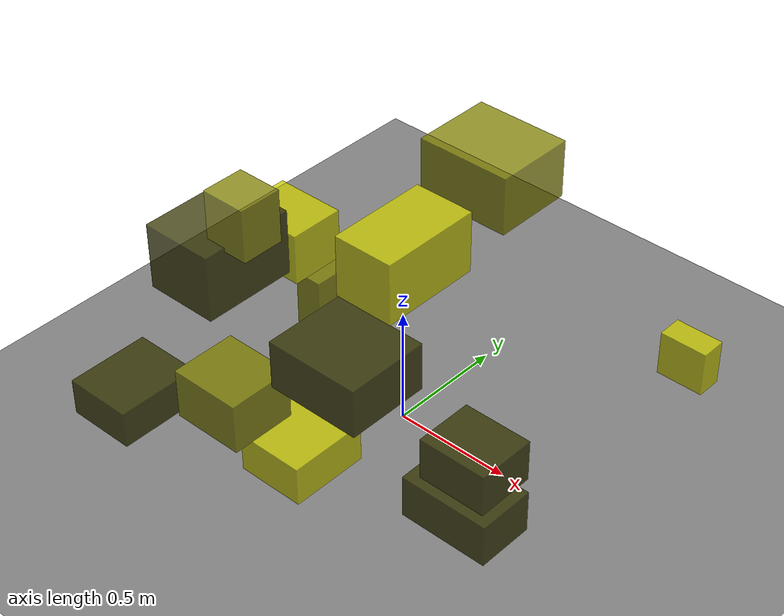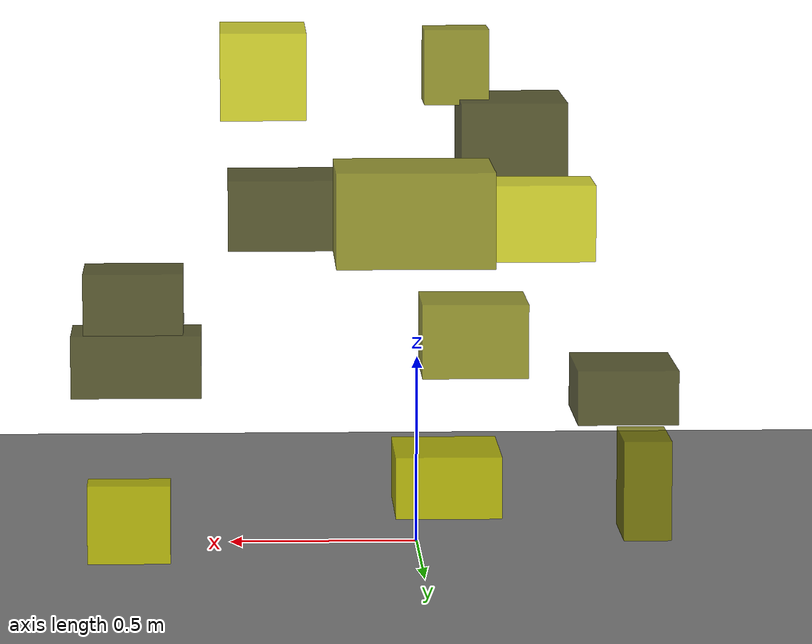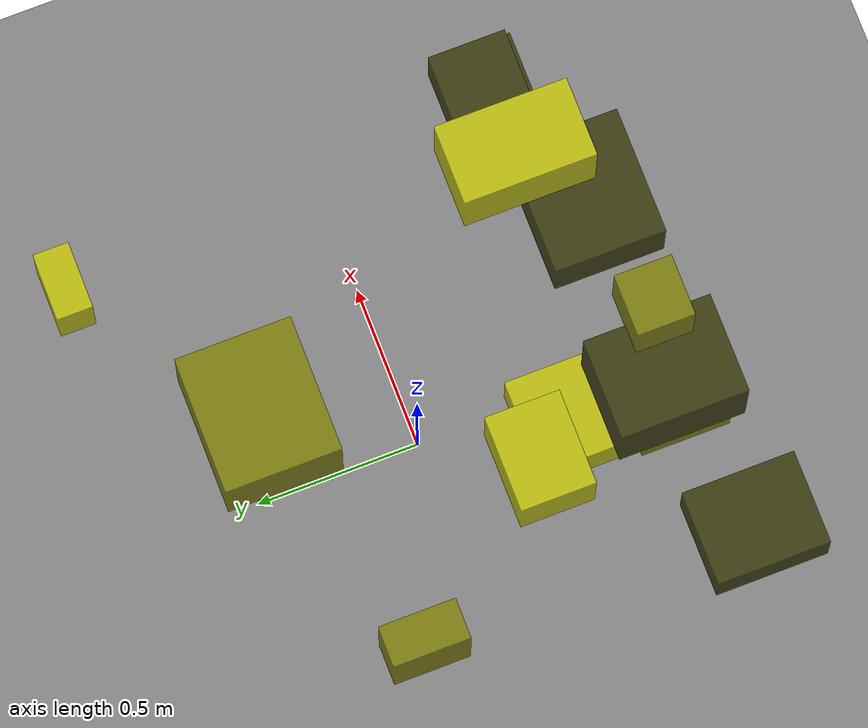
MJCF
<?xml version="1.0"?>
<mujoco model="obstacle_scene">
  <compiler angle="radian" coordinate="local"/>
  <option timestep="0.001" gravity="0 0 -9.81"/>

  <asset>
    <material name="obstacle_mat" rgba="0.8 0.8 0.0 0.8"/>
    <material name="ground_mat" rgba="0.5 0.5 0.5 1"/>
  </asset>

  <worldbody>
    <!-- Ground plane -->
    <geom name="ground" type="plane" size="3 3 0.1" material="ground_mat"/>

    <!-- Obstacles -->
    <body name="obstacle_0" pos="-0.288109 -0.624943 1.003069">
      <geom name="obs_0" type="box" size="0.146734 0.187789 0.130882" rgba="0.2 0.2 0.0 0.8"/>
    </body>
    <body name="obstacle_1" pos="0.028564 0.458830 0.945945">
      <geom name="obs_1" type="box" size="0.201971 0.171361 0.122035" rgba="0.5 0.5 0.0 0.8"/>
    </body>
    <body name="obstacle_2" pos="-0.101318 -0.456631 0.086689">
      <geom name="obs_2" type="box" size="0.146293 0.168443 0.085769" rgba="0.8 0.8 0.0 0.8"/>
    </body>
    <body name="obstacle_3" pos="-0.625269 -0.799873 0.277928">
      <geom name="obs_3" type="box" size="0.142801 0.172522 0.077144" rgba="0.2 0.2 0.0 0.8"/>
    </body>
    <body name="obstacle_4" pos="-0.188882 -0.695922 0.451490">
      <geom name="obs_4" type="box" size="0.149081 0.135269 0.104452" rgba="0.5 0.5 0.0 0.8"/>
    </body>
    <body name="obstacle_5" pos="-0.345724 -0.234519 0.840446">
      <geom name="obs_5" type="box" size="0.142296 0.111420 0.103437" rgba="0.8 0.8 0.0 0.8"/>
    </body>
    <body name="obstacle_6" pos="0.766378 -0.496600 0.587124">
      <geom name="obs_6" type="box" size="0.137756 0.117416 0.084584" rgba="0.2 0.2 0.0 0.8"/>
    </body>
    <body name="obstacle_7" pos="-0.592530 0.204802 0.191949">
      <geom name="obs_7" type="box" size="0.062469 0.118105 0.131468" rgba="0.5 0.5 0.0 0.8"/>
    </body>
    <body name="obstacle_8" pos="0.406435 -0.446267 1.226853">
      <geom name="obs_8" type="box" size="0.116956 0.194817 0.118109" rgba="0.8 0.8 0.0 0.8"/>
    </body>
    <body name="obstacle_9" pos="0.313464 -0.629521 0.820874">
      <geom name="obs_9" type="box" size="0.190180 0.165417 0.097436" rgba="0.2 0.2 0.0 0.8"/>
    </body>
    <body name="obstacle_10" pos="-0.133527 -0.644779 1.222816">
      <geom name="obs_10" type="box" size="0.089987 0.084013 0.103836" rgba="0.5 0.5 0.0 0.8"/>
    </body>
    <body name="obstacle_11" pos="0.753944 0.812020 0.217897">
      <geom name="obs_11" type="box" size="0.103326 0.054323 0.098157" rgba="0.8 0.8 0.0 0.8"/>
    </body>
    <body name="obstacle_12" pos="0.759857 -0.532448 0.406514">
      <geom name="obs_12" type="box" size="0.180565 0.113621 0.086471" rgba="0.2 0.2 0.0 0.8"/>
    </body>
  </worldbody>
</mujoco>
